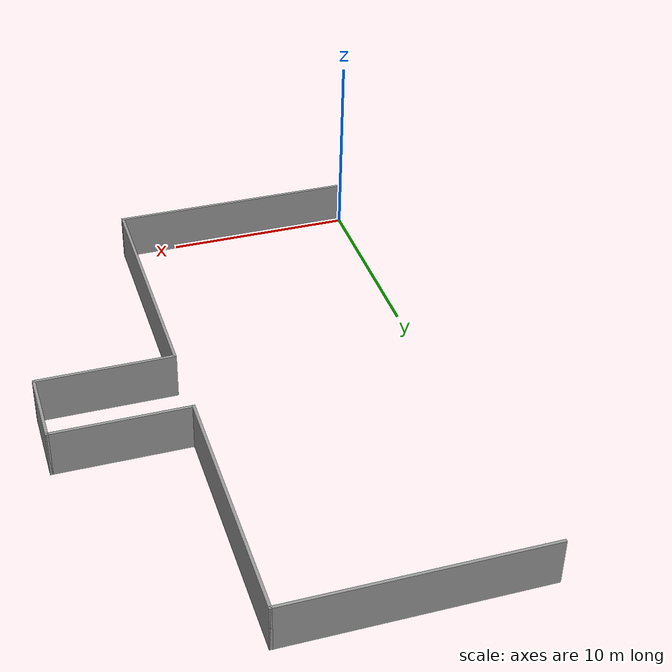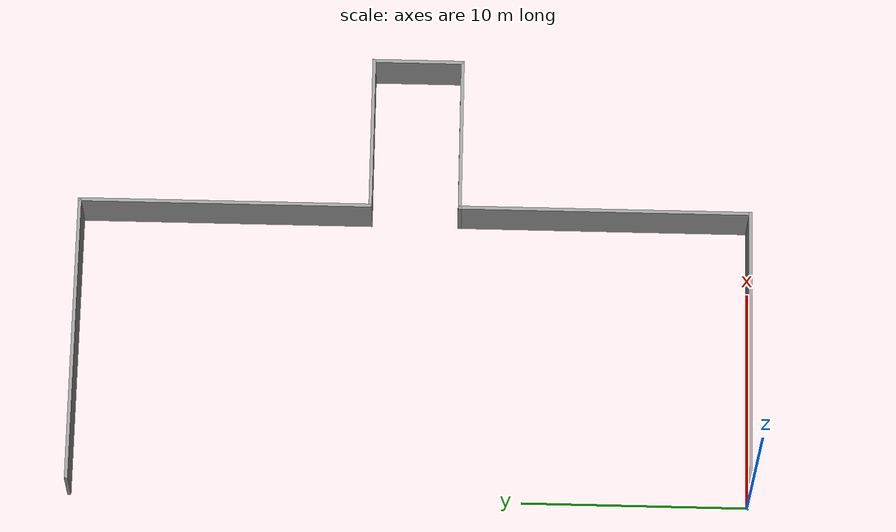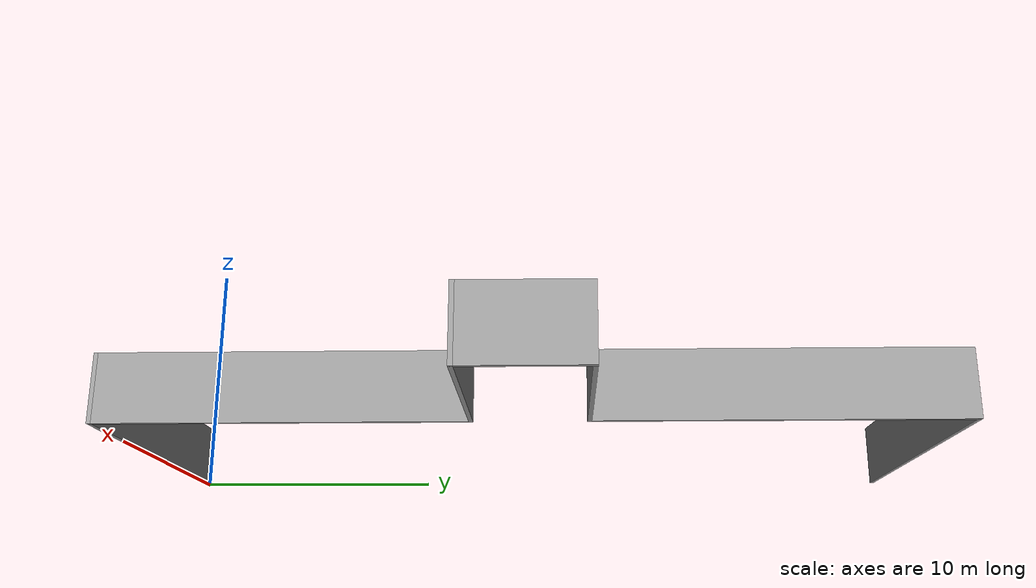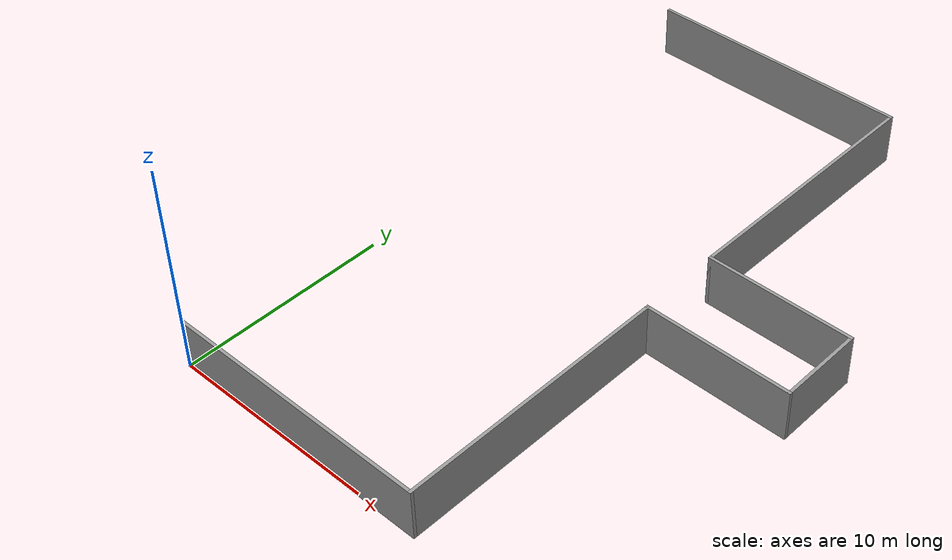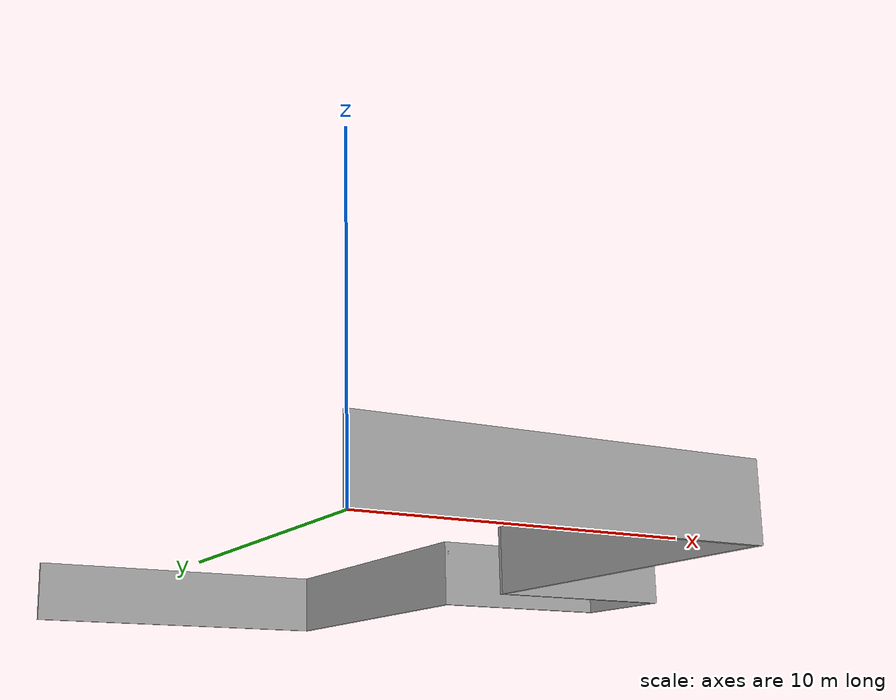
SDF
<?xml version='1.0'?>
<sdf version='1.6'>
  <model name='Task2'>
    <pose frame=''>10 15 0 0 -0 0</pose>
    <link name='Wall_0'>
      <collision name='Wall_0_Collision'>
        <geometry>
          <box>
            <size>13.15 0.15 2.5</size>
          </box>
        </geometry>
        <pose frame=''>0 0 1.25 0 -0 0</pose>
      </collision>
      <visual name='Wall_0_Visual'>
        <pose frame=''>0 0 1.25 0 -0 0</pose>
        <geometry>
          <box>
            <size>13.15 0.15 2.5</size>
          </box>
        </geometry>
        <material>
          <script>
            <uri>file://media/materials/scripts/gazebo.material</uri>
            <name>Gazebo/Grey</name>
          </script>
          <ambient>1 1 1 1</ambient>
        </material>
        <meta>
          <layer>0</layer>
        </meta>
      </visual>
      <pose frame=''>-3.5 15 0 0 -0 0</pose>
    </link>
    <link name='Wall_1'>
      <collision name='Wall_1_Collision'>
        <geometry>
          <box>
            <size>13.15 0.15 2.5</size>
          </box>
        </geometry>
        <pose frame=''>0 0 1.25 0 -0 0</pose>
      </collision>
      <visual name='Wall_1_Visual'>
        <pose frame=''>0 0 1.25 0 -0 0</pose>
        <geometry>
          <box>
            <size>13.15 0.15 2.5</size>
          </box>
        </geometry>
        <material>
          <script>
            <uri>file://media/materials/scripts/gazebo.material</uri>
            <name>Gazebo/Grey</name>
          </script>
          <ambient>1 1 1 1</ambient>
        </material>
        <meta>
          <layer>0</layer>
        </meta>
      </visual>
      <pose frame=''>3 8.5 0 0 -0 -1.5708</pose>
    </link>
    <link name='Wall_2'>
      <collision name='Wall_2_Collision'>
        <geometry>
          <box>
            <size>7.15 0.15 2.5</size>
          </box>
        </geometry>
        <pose frame=''>0 0 1.25 0 -0 0</pose>
      </collision>
      <visual name='Wall_2_Visual'>
        <pose frame=''>0 0 1.25 0 -0 0</pose>
        <geometry>
          <box>
            <size>7.15 0.15 2.5</size>
          </box>
        </geometry>
        <material>
          <script>
            <uri>file://media/materials/scripts/gazebo.material</uri>
            <name>Gazebo/Grey</name>
          </script>
          <ambient>1 1 1 1</ambient>
        </material>
        <meta>
          <layer>0</layer>
        </meta>
      </visual>
      <pose frame=''>6.5 2 0 0 -0 0</pose>
    </link>
    <link name='Wall_3'>
      <collision name='Wall_3_Collision'>
        <geometry>
          <box>
            <size>4.15 0.15 2.5</size>
          </box>
        </geometry>
        <pose frame=''>0 0 1.25 0 -0 0</pose>
      </collision>
      <visual name='Wall_3_Visual'>
        <pose frame=''>0 0 1.25 0 -0 0</pose>
        <geometry>
          <box>
            <size>4.15 0.15 2.5</size>
          </box>
        </geometry>
        <material>
          <script>
            <uri>file://media/materials/scripts/gazebo.material</uri>
            <name>Gazebo/Grey</name>
          </script>
          <ambient>1 1 1 1</ambient>
        </material>
        <meta>
          <layer>0</layer>
        </meta>
      </visual>
      <pose frame=''>10 0 0 0 -0 -1.5708</pose>
    </link>
    <link name='Wall_4'>
      <collision name='Wall_4_Collision'>
        <geometry>
          <box>
            <size>7.15 0.15 2.5</size>
          </box>
        </geometry>
        <pose frame=''>0 0 1.25 0 -0 0</pose>
      </collision>
      <visual name='Wall_4_Visual'>
        <pose frame=''>0 0 1.25 0 -0 0</pose>
        <geometry>
          <box>
            <size>7.15 0.15 2.5</size>
          </box>
        </geometry>
        <material>
          <script>
            <uri>file://media/materials/scripts/gazebo.material</uri>
            <name>Gazebo/Grey</name>
          </script>
          <ambient>1 1 1 1</ambient>
        </material>
        <meta>
          <layer>0</layer>
        </meta>
      </visual>
      <pose frame=''>6.5 -2 0 0 -0 3.14159</pose>
    </link>
    <link name='Wall_5'>
      <collision name='Wall_5_Collision'>
        <geometry>
          <box>
            <size>13.15 0.15 2.5</size>
          </box>
        </geometry>
        <pose frame=''>0 0 1.25 0 -0 0</pose>
      </collision>
      <visual name='Wall_5_Visual'>
        <pose frame=''>0 0 1.25 0 -0 0</pose>
        <geometry>
          <box>
            <size>13.15 0.15 2.5</size>
          </box>
        </geometry>
        <material>
          <script>
            <uri>file://media/materials/scripts/gazebo.material</uri>
            <name>Gazebo/Grey</name>
          </script>
          <ambient>1 1 1 1</ambient>
        </material>
        <meta>
          <layer>0</layer>
        </meta>
      </visual>
      <pose frame=''>3 -8.5 0 0 -0 -1.5708</pose>
    </link>
    <link name='Wall_6'>
      <collision name='Wall_6_Collision'>
        <geometry>
          <box>
            <size>13.15 0.15 2.5</size>
          </box>
        </geometry>
        <pose frame=''>0 0 1.25 0 -0 0</pose>
      </collision>
      <visual name='Wall_6_Visual'>
        <pose frame=''>0 0 1.25 0 -0 0</pose>
        <geometry>
          <box>
            <size>13.15 0.15 2.5</size>
          </box>
        </geometry>
        <material>
          <script>
            <uri>file://media/materials/scripts/gazebo.material</uri>
            <name>Gazebo/Grey</name>
          </script>
          <ambient>1 1 1 1</ambient>
        </material>
        <meta>
          <layer>0</layer>
        </meta>
      </visual>
      <pose frame=''>-3.5 -15 0 0 -0 3.14159</pose>
    </link>
    <static>1</static>
  </model>
</sdf>
